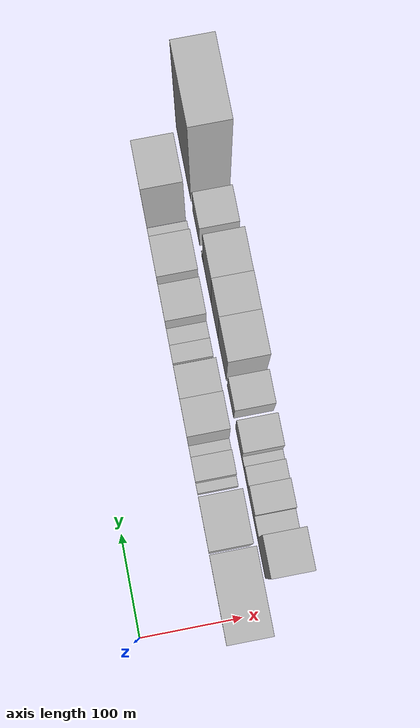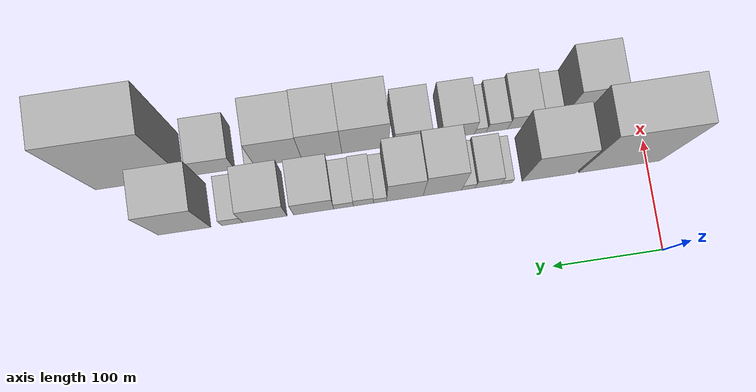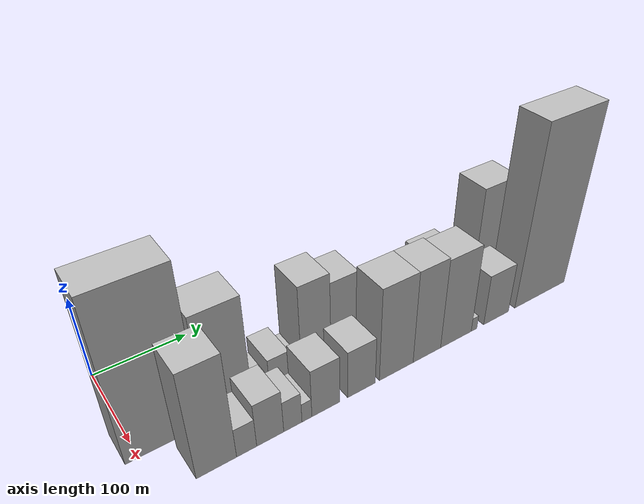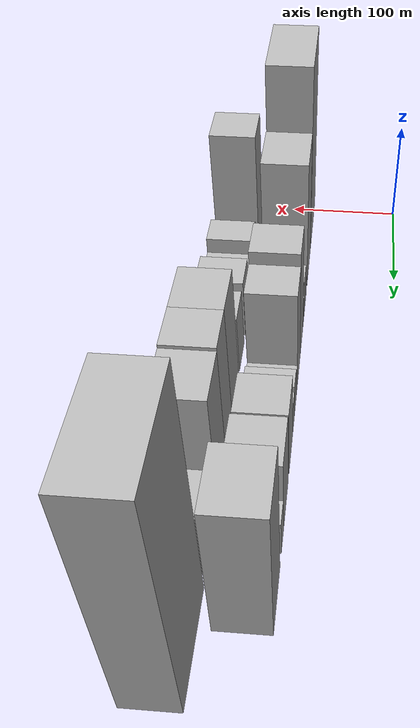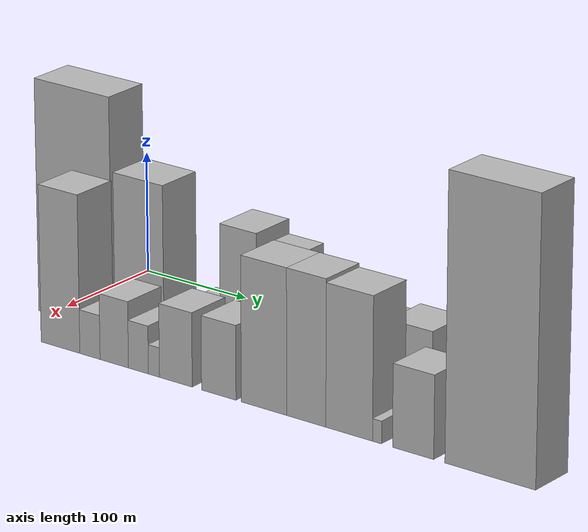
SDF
<sdf version="1.6">
 <world name="default">
  <model name="building_13">
   <static>1</static>
   <pose>100.0000 25.1764 0 0.000000 0.000000 0.000000</pose>
   <link name="link">
    <pose>0 0 96.00 0 0 0</pose>
    <collision name="collision"><geometry><box><size>40.0000 74.7311 192.0000</size></box></geometry></collision>
    <visual name="visual">
     <cast_shadows>0</cast_shadows>
     <geometry><box><size>40.0000 74.7311 192.0000</size></box></geometry>
     <material>
      <script>
       <uri>model://HANNAS_wall/materials/scripts</uri>
       <uri>model://HANNAS_wall/materials/textures</uri>
       <name>vrc/HANNAS_wall</name>
      </script>
     </material>
    </visual>
   </link>
  </model>
  <model name="building_14">
   <static>1</static>
   <pose>100.0000 89.9891 0 0.000000 0.000000 0.000000</pose>
   <link name="link">
    <pose>0 0 66.00 0 0 0</pose>
    <collision name="collision"><geometry><box><size>40.0000 48.8942 132.0000</size></box></geometry></collision>
    <visual name="visual">
     <cast_shadows>0</cast_shadows>
     <geometry><box><size>40.0000 48.8942 132.0000</size></box></geometry>
     <material>
      <script>
       <uri>model://HANNAS_wall/materials/scripts</uri>
       <uri>model://HANNAS_wall/materials/textures</uri>
       <name>vrc/HANNAS_wall</name>
      </script>
     </material>
    </visual>
   </link>
  </model>
  <model name="building_15">
   <static>1</static>
   <pose>100.0000 128.4961 0 0.000000 0.000000 0.000000</pose>
   <link name="link">
    <pose>0 0 10.50 0 0 0</pose>
    <collision name="collision"><geometry><box><size>40.0000 10.1199 21.0000</size></box></geometry></collision>
    <visual name="visual">
     <cast_shadows>0</cast_shadows>
     <geometry><box><size>40.0000 10.1199 21.0000</size></box></geometry>
     <material>
      <script>
       <uri>model://HANNAS_wall/materials/scripts</uri>
       <uri>model://HANNAS_wall/materials/textures</uri>
       <name>vrc/HANNAS_wall</name>
      </script>
     </material>
    </visual>
   </link>
  </model>
  <model name="building_16">
   <static>1</static>
   <pose>100.0000 145.5129 0 0.000000 0.000000 0.000000</pose>
   <link name="link">
    <pose>0 0 21.00 0 0 0</pose>
    <collision name="collision"><geometry><box><size>40.0000 23.9136 42.0000</size></box></geometry></collision>
    <visual name="visual">
     <cast_shadows>0</cast_shadows>
     <geometry><box><size>40.0000 23.9136 42.0000</size></box></geometry>
     <material>
      <script>
       <uri>model://HANNAS_wall/materials/scripts</uri>
       <uri>model://HANNAS_wall/materials/textures</uri>
       <name>vrc/HANNAS_wall</name>
      </script>
     </material>
    </visual>
   </link>
  </model>
  <model name="building_17">
   <static>1</static>
   <pose>100.0000 163.6400 0 0.000000 0.000000 0.000000</pose>
   <link name="link">
    <pose>0 0 13.50 0 0 0</pose>
    <collision name="collision"><geometry><box><size>40.0000 12.3405 27.0000</size></box></geometry></collision>
    <visual name="visual">
     <cast_shadows>0</cast_shadows>
     <geometry><box><size>40.0000 12.3405 27.0000</size></box></geometry>
     <material>
      <script>
       <uri>model://HANNAS_wall/materials/scripts</uri>
       <uri>model://HANNAS_wall/materials/textures</uri>
       <name>vrc/HANNAS_wall</name>
      </script>
     </material>
    </visual>
   </link>
  </model>
  <model name="building_18">
   <static>1</static>
   <pose>100.0000 187.3337 0 0.000000 0.000000 0.000000</pose>
   <link name="link">
    <pose>0 0 57.00 0 0 0</pose>
    <collision name="collision"><geometry><box><size>40.0000 35.0470 114.0000</size></box></geometry></collision>
    <visual name="visual">
     <cast_shadows>0</cast_shadows>
     <geometry><box><size>40.0000 35.0470 114.0000</size></box></geometry>
     <material>
      <script>
       <uri>model://HANNAS_wall/materials/scripts</uri>
       <uri>model://HANNAS_wall/materials/textures</uri>
       <name>vrc/HANNAS_wall</name>
      </script>
     </material>
    </visual>
   </link>
  </model>
  <model name="building_19">
   <static>1</static>
   <pose>100.0000 221.4470 0 0.000000 0.000000 0.000000</pose>
   <link name="link">
    <pose>0 0 51.00 0 0 0</pose>
    <collision name="collision"><geometry><box><size>40.0000 33.1795 102.0000</size></box></geometry></collision>
    <visual name="visual">
     <cast_shadows>0</cast_shadows>
     <geometry><box><size>40.0000 33.1795 102.0000</size></box></geometry>
     <material>
      <script>
       <uri>model://HANNAS_wall/materials/scripts</uri>
       <uri>model://HANNAS_wall/materials/textures</uri>
       <name>vrc/HANNAS_wall</name>
      </script>
     </material>
    </visual>
   </link>
  </model>
  <model name="building_20">
   <static>1</static>
   <pose>100.0000 244.0328 0 0.000000 0.000000 0.000000</pose>
   <link name="link">
    <pose>0 0 13.50 0 0 0</pose>
    <collision name="collision"><geometry><box><size>40.0000 11.9920 27.0000</size></box></geometry></collision>
    <visual name="visual">
     <cast_shadows>0</cast_shadows>
     <geometry><box><size>40.0000 11.9920 27.0000</size></box></geometry>
     <material>
      <script>
       <uri>model://HANNAS_wall/materials/scripts</uri>
       <uri>model://HANNAS_wall/materials/textures</uri>
       <name>vrc/HANNAS_wall</name>
      </script>
     </material>
    </visual>
   </link>
  </model>
  <model name="building_21">
   <static>1</static>
   <pose>100.0000 259.2076 0 0.000000 0.000000 0.000000</pose>
   <link name="link">
    <pose>0 0 18.00 0 0 0</pose>
    <collision name="collision"><geometry><box><size>40.0000 18.3576 36.0000</size></box></geometry></collision>
    <visual name="visual">
     <cast_shadows>0</cast_shadows>
     <geometry><box><size>40.0000 18.3576 36.0000</size></box></geometry>
     <material>
      <script>
       <uri>model://HANNAS_wall/materials/scripts</uri>
       <uri>model://HANNAS_wall/materials/textures</uri>
       <name>vrc/HANNAS_wall</name>
      </script>
     </material>
    </visual>
   </link>
  </model>
  <model name="building_22">
   <static>1</static>
   <pose>100.0000 277.2359 0 0.000000 0.000000 0.000000</pose>
   <link name="link">
    <pose>0 0 15.00 0 0 0</pose>
    <collision name="collision"><geometry><box><size>40.0000 17.6990 30.0000</size></box></geometry></collision>
    <visual name="visual">
     <cast_shadows>0</cast_shadows>
     <geometry><box><size>40.0000 17.6990 30.0000</size></box></geometry>
     <material>
      <script>
       <uri>model://HANNAS_wall/materials/scripts</uri>
       <uri>model://HANNAS_wall/materials/textures</uri>
       <name>vrc/HANNAS_wall</name>
      </script>
     </material>
    </visual>
   </link>
  </model>
  <model name="building_23">
   <static>1</static>
   <pose>100.0000 304.2465 0 0.000000 0.000000 0.000000</pose>
   <link name="link">
    <pose>0 0 34.50 0 0 0</pose>
    <collision name="collision"><geometry><box><size>40.0000 36.3223 69.0000</size></box></geometry></collision>
    <visual name="visual">
     <cast_shadows>0</cast_shadows>
     <geometry><box><size>40.0000 36.3223 69.0000</size></box></geometry>
     <material>
      <script>
       <uri>model://HANNAS_wall/materials/scripts</uri>
       <uri>model://HANNAS_wall/materials/textures</uri>
       <name>vrc/HANNAS_wall</name>
      </script>
     </material>
    </visual>
   </link>
  </model>
  <model name="building_24">
   <static>1</static>
   <pose>100.0000 348.5657 0 0.000000 0.000000 0.000000</pose>
   <link name="link">
    <pose>0 0 37.50 0 0 0</pose>
    <collision name="collision"><geometry><box><size>40.0000 40.3161 75.0000</size></box></geometry></collision>
    <visual name="visual">
     <cast_shadows>0</cast_shadows>
     <geometry><box><size>40.0000 40.3161 75.0000</size></box></geometry>
     <material>
      <script>
       <uri>model://HANNAS_wall/materials/scripts</uri>
       <uri>model://HANNAS_wall/materials/textures</uri>
       <name>vrc/HANNAS_wall</name>
      </script>
     </material>
    </visual>
   </link>
  </model>
  <model name="building_25">
   <static>1</static>
   <pose>100.0000 378.0806 0 0.000000 0.000000 0.000000</pose>
   <link name="link">
    <pose>0 0 18.00 0 0 0</pose>
    <collision name="collision"><geometry><box><size>40.0000 18.7138 36.0000</size></box></geometry></collision>
    <visual name="visual">
     <cast_shadows>0</cast_shadows>
     <geometry><box><size>40.0000 18.7138 36.0000</size></box></geometry>
     <material>
      <script>
       <uri>model://HANNAS_wall/materials/scripts</uri>
       <uri>model://HANNAS_wall/materials/textures</uri>
       <name>vrc/HANNAS_wall</name>
      </script>
     </material>
    </visual>
   </link>
  </model>
  <model name="building_26">
   <static>1</static>
   <pose>100.0000 421.2132 0 0.000000 0.000000 0.000000</pose>
   <link name="link">
    <pose>0 0 67.50 0 0 0</pose>
    <collision name="collision"><geometry><box><size>40.0000 47.5513 135.0000</size></box></geometry></collision>
    <visual name="visual">
     <cast_shadows>0</cast_shadows>
     <geometry><box><size>40.0000 47.5513 135.0000</size></box></geometry>
     <material>
      <script>
       <uri>model://HANNAS_wall/materials/scripts</uri>
       <uri>model://HANNAS_wall/materials/textures</uri>
       <name>vrc/HANNAS_wall</name>
      </script>
     </material>
    </visual>
   </link>
  </model>
  <model name="building_40">
   <static>1</static>
   <pose>149.0000 51.8193 0 0.000000 0.000000 0.000000</pose>
   <link name="link">
    <pose>0 0 64.50 0 0 0</pose>
    <collision name="collision"><geometry><box><size>40.0000 38.9761 129.0000</size></box></geometry></collision>
    <visual name="visual">
     <cast_shadows>0</cast_shadows>
     <geometry><box><size>40.0000 38.9761 129.0000</size></box></geometry>
     <material>
      <script>
       <uri>model://HANNAS_wall/materials/scripts</uri>
       <uri>model://HANNAS_wall/materials/textures</uri>
       <name>vrc/HANNAS_wall</name>
      </script>
     </material>
    </visual>
   </link>
  </model>
  <model name="building_41">
   <static>1</static>
   <pose>149.0000 81.4013 0 0.000000 0.000000 0.000000</pose>
   <link name="link">
    <pose>0 0 18.00 0 0 0</pose>
    <collision name="collision"><geometry><box><size>40.0000 20.1880 36.0000</size></box></geometry></collision>
    <visual name="visual">
     <cast_shadows>0</cast_shadows>
     <geometry><box><size>40.0000 20.1880 36.0000</size></box></geometry>
     <material>
      <script>
       <uri>model://HANNAS_wall/materials/scripts</uri>
       <uri>model://HANNAS_wall/materials/textures</uri>
       <name>vrc/HANNAS_wall</name>
      </script>
     </material>
    </visual>
   </link>
  </model>
  <model name="building_42">
   <static>1</static>
   <pose>149.0000 105.5589 0 0.000000 0.000000 0.000000</pose>
   <link name="link">
    <pose>0 0 27.00 0 0 0</pose>
    <collision name="collision"><geometry><box><size>40.0000 28.1271 54.0000</size></box></geometry></collision>
    <visual name="visual">
     <cast_shadows>0</cast_shadows>
     <geometry><box><size>40.0000 28.1271 54.0000</size></box></geometry>
     <material>
      <script>
       <uri>model://HANNAS_wall/materials/scripts</uri>
       <uri>model://HANNAS_wall/materials/textures</uri>
       <name>vrc/HANNAS_wall</name>
      </script>
     </material>
    </visual>
   </link>
  </model>
  <model name="building_43">
   <static>1</static>
   <pose>149.0000 129.4141 0 0.000000 0.000000 0.000000</pose>
   <link name="link">
    <pose>0 0 19.50 0 0 0</pose>
    <collision name="collision"><geometry><box><size>40.0000 19.5834 39.0000</size></box></geometry></collision>
    <visual name="visual">
     <cast_shadows>0</cast_shadows>
     <geometry><box><size>40.0000 19.5834 39.0000</size></box></geometry>
     <material>
      <script>
       <uri>model://HANNAS_wall/materials/scripts</uri>
       <uri>model://HANNAS_wall/materials/textures</uri>
       <name>vrc/HANNAS_wall</name>
      </script>
     </material>
    </visual>
   </link>
  </model>
  <model name="building_44">
   <static>1</static>
   <pose>149.0000 144.6477 0 0.000000 0.000000 0.000000</pose>
   <link name="link">
    <pose>0 0 12.00 0 0 0</pose>
    <collision name="collision"><geometry><box><size>40.0000 10.8839 24.0000</size></box></geometry></collision>
    <visual name="visual">
     <cast_shadows>0</cast_shadows>
     <geometry><box><size>40.0000 10.8839 24.0000</size></box></geometry>
     <material>
      <script>
       <uri>model://HANNAS_wall/materials/scripts</uri>
       <uri>model://HANNAS_wall/materials/textures</uri>
       <name>vrc/HANNAS_wall</name>
      </script>
     </material>
    </visual>
   </link>
  </model>
  <model name="building_45">
   <static>1</static>
   <pose>149.0000 165.9716 0 0.000000 0.000000 0.000000</pose>
   <link name="link">
    <pose>0 0 30.00 0 0 0</pose>
    <collision name="collision"><geometry><box><size>40.0000 31.7638 60.0000</size></box></geometry></collision>
    <visual name="visual">
     <cast_shadows>0</cast_shadows>
     <geometry><box><size>40.0000 31.7638 60.0000</size></box></geometry>
     <material>
      <script>
       <uri>model://HANNAS_wall/materials/scripts</uri>
       <uri>model://HANNAS_wall/materials/textures</uri>
       <name>vrc/HANNAS_wall</name>
      </script>
     </material>
    </visual>
   </link>
  </model>
  <model name="building_46">
   <static>1</static>
   <pose>149.0000 207.3541 0 0.000000 0.000000 0.000000</pose>
   <link name="link">
    <pose>0 0 30.00 0 0 0</pose>
    <collision name="collision"><geometry><box><size>40.0000 33.0013 60.0000</size></box></geometry></collision>
    <visual name="visual">
     <cast_shadows>0</cast_shadows>
     <geometry><box><size>40.0000 33.0013 60.0000</size></box></geometry>
     <material>
      <script>
       <uri>model://HANNAS_wall/materials/scripts</uri>
       <uri>model://HANNAS_wall/materials/textures</uri>
       <name>vrc/HANNAS_wall</name>
      </script>
     </material>
    </visual>
   </link>
  </model>
  <model name="building_47">
   <static>1</static>
   <pose>149.0000 250.2109 0 0.000000 0.000000 0.000000</pose>
   <link name="link">
    <pose>0 0 58.50 0 0 0</pose>
    <collision name="collision"><geometry><box><size>40.0000 42.7122 117.0000</size></box></geometry></collision>
    <visual name="visual">
     <cast_shadows>0</cast_shadows>
     <geometry><box><size>40.0000 42.7122 117.0000</size></box></geometry>
     <material>
      <script>
       <uri>model://HANNAS_wall/materials/scripts</uri>
       <uri>model://HANNAS_wall/materials/textures</uri>
       <name>vrc/HANNAS_wall</name>
      </script>
     </material>
    </visual>
   </link>
  </model>
  <model name="building_48">
   <static>1</static>
   <pose>149.0000 289.8653 0 0.000000 0.000000 0.000000</pose>
   <link name="link">
    <pose>0 0 58.50 0 0 0</pose>
    <collision name="collision"><geometry><box><size>40.0000 36.5966 117.0000</size></box></geometry></collision>
    <visual name="visual">
     <cast_shadows>0</cast_shadows>
     <geometry><box><size>40.0000 36.5966 117.0000</size></box></geometry>
     <material>
      <script>
       <uri>model://HANNAS_wall/materials/scripts</uri>
       <uri>model://HANNAS_wall/materials/textures</uri>
       <name>vrc/HANNAS_wall</name>
      </script>
     </material>
    </visual>
   </link>
  </model>
  <model name="building_49">
   <static>1</static>
   <pose>149.0000 329.6094 0 0.000000 0.000000 0.000000</pose>
   <link name="link">
    <pose>0 0 57.00 0 0 0</pose>
    <collision name="collision"><geometry><box><size>40.0000 42.8917 114.0000</size></box></geometry></collision>
    <visual name="visual">
     <cast_shadows>0</cast_shadows>
     <geometry><box><size>40.0000 42.8917 114.0000</size></box></geometry>
     <material>
      <script>
       <uri>model://HANNAS_wall/materials/scripts</uri>
       <uri>model://HANNAS_wall/materials/textures</uri>
       <name>vrc/HANNAS_wall</name>
      </script>
     </material>
    </visual>
   </link>
  </model>
  <model name="building_50">
   <static>1</static>
   <pose>149.0000 355.1348 0 0.000000 0.000000 0.000000</pose>
   <link name="link">
    <pose>0 0 9.00 0 0 0</pose>
    <collision name="collision"><geometry><box><size>40.0000 8.1591 18.0000</size></box></geometry></collision>
    <visual name="visual">
     <cast_shadows>0</cast_shadows>
     <geometry><box><size>40.0000 8.1591 18.0000</size></box></geometry>
     <material>
      <script>
       <uri>model://HANNAS_wall/materials/scripts</uri>
       <uri>model://HANNAS_wall/materials/textures</uri>
       <name>vrc/HANNAS_wall</name>
      </script>
     </material>
    </visual>
   </link>
  </model>
  <model name="building_51">
   <static>1</static>
   <pose>149.0000 387.7445 0 0.000000 0.000000 0.000000</pose>
   <link name="link">
    <pose>0 0 33.00 0 0 0</pose>
    <collision name="collision"><geometry><box><size>40.0000 37.0604 66.0000</size></box></geometry></collision>
    <visual name="visual">
     <cast_shadows>0</cast_shadows>
     <geometry><box><size>40.0000 37.0604 66.0000</size></box></geometry>
     <material>
      <script>
       <uri>model://HANNAS_wall/materials/scripts</uri>
       <uri>model://HANNAS_wall/materials/textures</uri>
       <name>vrc/HANNAS_wall</name>
      </script>
     </material>
    </visual>
   </link>
  </model>
  <model name="building_52">
   <static>1</static>
   <pose>149.0000 456.1839 0 0.000000 0.000000 0.000000</pose>
   <link name="link">
    <pose>0 0 112.50 0 0 0</pose>
    <collision name="collision"><geometry><box><size>40.0000 79.8184 225.0000</size></box></geometry></collision>
    <visual name="visual">
     <cast_shadows>0</cast_shadows>
     <geometry><box><size>40.0000 79.8184 225.0000</size></box></geometry>
     <material>
      <script>
       <uri>model://HANNAS_wall/materials/scripts</uri>
       <uri>model://HANNAS_wall/materials/textures</uri>
       <name>vrc/HANNAS_wall</name>
      </script>
     </material>
    </visual>
   </link>
  </model>
 </world>
</sdf>
